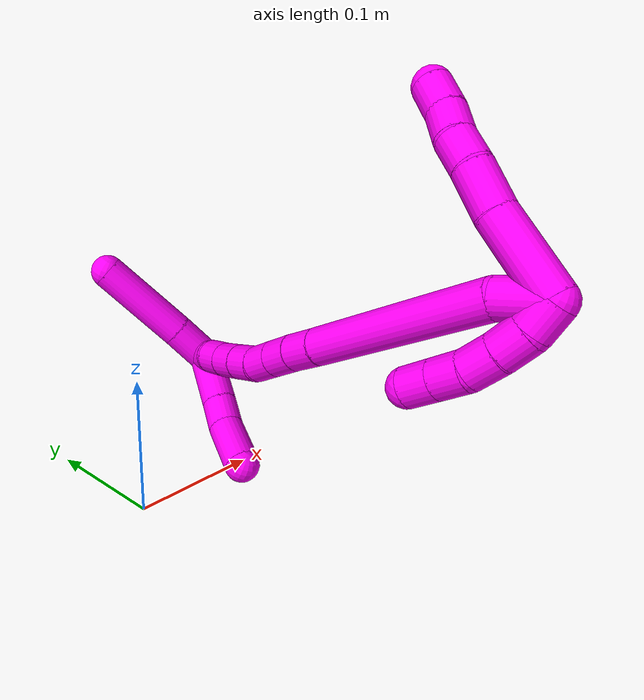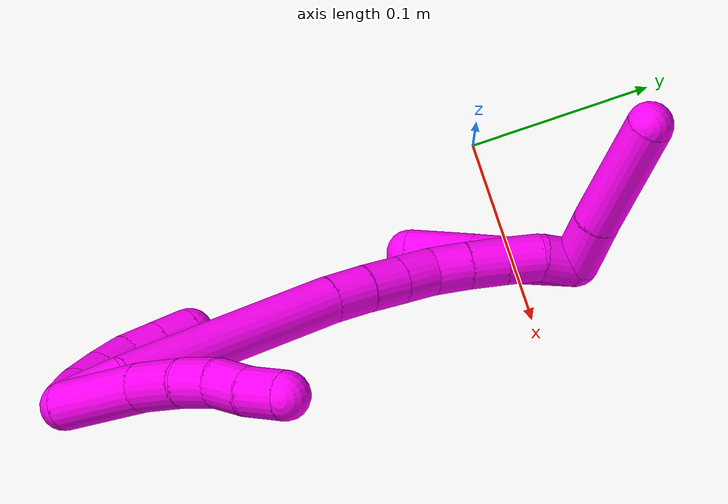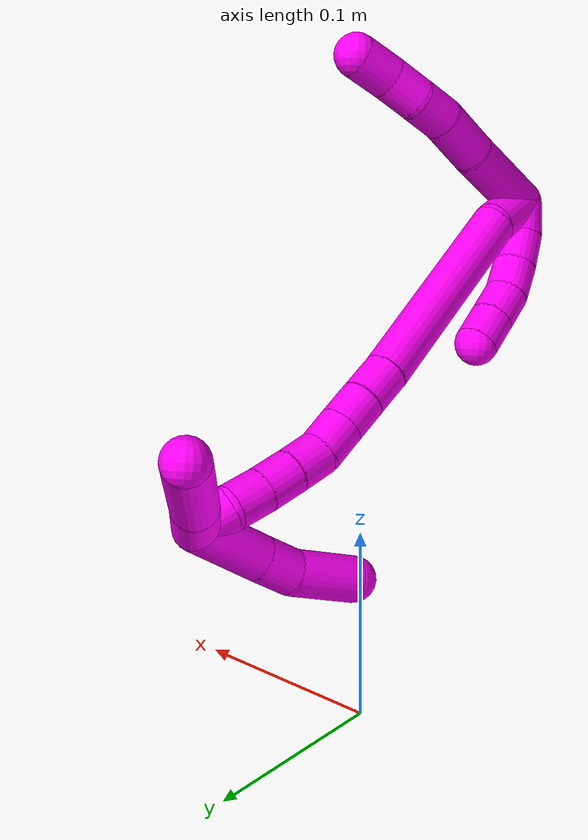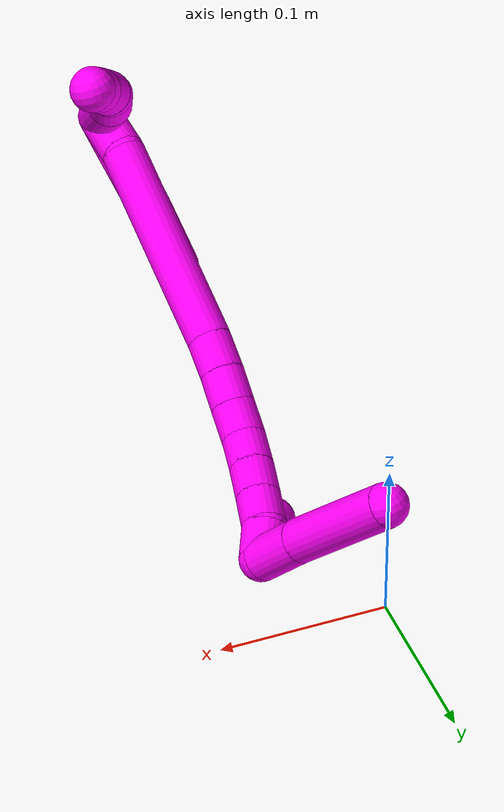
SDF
<sdf version="1.7">
 <world name="default">
  <model name="10">
   <static>0</static>
   <link name="10">
    <collision name="collision-cylinder-e_1_2_8">
     <pose>-0.004531 0.024819 0.01071 -1.1634 -0.166091 0.109364</pose>
     <geometry><cylinder><radius>0.0125</radius><length>0.054816</length></cylinder></geometry>
     <surface>
      <friction><ode><mu>1.16</mu><mu2>1.16</mu2><slip1>0</slip1><slip2>0</slip2></ode></friction>
      <contact><ode><kp>1e+06</kp><kd>1</kd><max_vel>0</max_vel><min_depth>0.001</min_depth></ode></contact>
     </surface>
    </collision>
    <visual name="visual-cylinder-e_1_2_8">
     <pose>-0.004531 0.024819 0.01071 -1.1634 -0.166091 0.109364</pose>
     <geometry><cylinder><radius>0.0125</radius><length>0.054816</length></cylinder></geometry>
     <material><ambient>1 0 0.964706 1</ambient></material>
    </visual>
    <collision name="collision-cylinder-e_2_8_9">
     <pose>-0.010393 0.06287 0.028681 -1.06898 -0.087879 0.052043</pose>
     <geometry><cylinder><radius>0.0125</radius><length>0.030304</length></cylinder></geometry>
     <surface>
      <friction><ode><mu>1.16</mu><mu2>1.16</mu2><slip1>0</slip1><slip2>0</slip2></ode></friction>
      <contact><ode><kp>1e+06</kp><kd>1</kd><max_vel>0</max_vel><min_depth>0.001</min_depth></ode></contact>
     </surface>
    </collision>
    <visual name="visual-cylinder-e_2_8_9">
     <pose>-0.010393 0.06287 0.028681 -1.06898 -0.087879 0.052043</pose>
     <geometry><cylinder><radius>0.0125</radius><length>0.030304</length></cylinder></geometry>
     <material><ambient>1 0 0.964706 1</ambient></material>
    </visual>
    <collision name="collision-cylinder-e_3_9_10">
     <pose>-0.011569 0.086062 0.039996 -1.18413 0.014243 -0.009579</pose>
     <geometry><cylinder><radius>0.0125</radius><length>0.021508</length></cylinder></geometry>
     <surface>
      <friction><ode><mu>1.16</mu><mu2>1.16</mu2><slip1>0</slip1><slip2>0</slip2></ode></friction>
      <contact><ode><kp>1e+06</kp><kd>1</kd><max_vel>0</max_vel><min_depth>0.001</min_depth></ode></contact>
     </surface>
    </collision>
    <visual name="visual-cylinder-e_3_9_10">
     <pose>-0.011569 0.086062 0.039996 -1.18413 0.014243 -0.009579</pose>
     <geometry><cylinder><radius>0.0125</radius><length>0.021508</length></cylinder></geometry>
     <material><ambient>1 0 0.964706 1</ambient></material>
    </visual>
    <collision name="collision-cylinder-e_4_10_11">
     <pose>-0.009382 0.104937 0.048702 -1.08997 0.199556 -0.121231</pose>
     <geometry><cylinder><radius>0.0125</radius><length>0.020521</length></cylinder></geometry>
     <surface>
      <friction><ode><mu>1.16</mu><mu2>1.16</mu2><slip1>0</slip1><slip2>0</slip2></ode></friction>
      <contact><ode><kp>1e+06</kp><kd>1</kd><max_vel>0</max_vel><min_depth>0.001</min_depth></ode></contact>
     </surface>
    </collision>
    <visual name="visual-cylinder-e_4_10_11">
     <pose>-0.009382 0.104937 0.048702 -1.08997 0.199556 -0.121231</pose>
     <geometry><cylinder><radius>0.0125</radius><length>0.020521</length></cylinder></geometry>
     <material><ambient>1 0 0.964706 1</ambient></material>
    </visual>
    <collision name="collision-cylinder-e_5_11_6">
     <pose>-0.006204 0.124386 0.057631 -1.18506 0.100321 -0.067569</pose>
     <geometry><cylinder><radius>0.0125</radius><length>0.02285</length></cylinder></geometry>
     <surface>
      <friction><ode><mu>1.16</mu><mu2>1.16</mu2><slip1>0</slip1><slip2>0</slip2></ode></friction>
      <contact><ode><kp>1e+06</kp><kd>1</kd><max_vel>0</max_vel><min_depth>0.001</min_depth></ode></contact>
     </surface>
    </collision>
    <visual name="visual-cylinder-e_5_11_6">
     <pose>-0.006204 0.124386 0.057631 -1.18506 0.100321 -0.067569</pose>
     <geometry><cylinder><radius>0.0125</radius><length>0.02285</length></cylinder></geometry>
     <material><ambient>1 0 0.964706 1</ambient></material>
    </visual>
    <collision name="collision-cylinder-e_1_2_12">
     <pose>-0.001557 0.000715 -0.009852 -3.06918 -0.156309 2.27511</pose>
     <geometry><cylinder><radius>0.0125</radius><length>0.02</length></cylinder></geometry>
     <surface>
      <friction><ode><mu>1.16</mu><mu2>1.16</mu2><slip1>0</slip1><slip2>0</slip2></ode></friction>
      <contact><ode><kp>1e+06</kp><kd>1</kd><max_vel>0</max_vel><min_depth>0.001</min_depth></ode></contact>
     </surface>
    </collision>
    <visual name="visual-cylinder-e_1_2_12">
     <pose>-0.001557 0.000715 -0.009852 -3.06918 -0.156309 2.27511</pose>
     <geometry><cylinder><radius>0.0125</radius><length>0.02</length></cylinder></geometry>
     <material><ambient>1 0 0.964706 1</ambient></material>
    </visual>
    <collision name="collision-cylinder-e_2_12_13">
     <pose>-0.004835 0.004839 -0.028946 -2.78813 -0.173049 0.904259</pose>
     <geometry><cylinder><radius>0.0125</radius><length>0.02</length></cylinder></geometry>
     <surface>
      <friction><ode><mu>1.16</mu><mu2>1.16</mu2><slip1>0</slip1><slip2>0</slip2></ode></friction>
      <contact><ode><kp>1e+06</kp><kd>1</kd><max_vel>0</max_vel><min_depth>0.001</min_depth></ode></contact>
     </surface>
    </collision>
    <visual name="visual-cylinder-e_2_12_13">
     <pose>-0.004835 0.004839 -0.028946 -2.78813 -0.173049 0.904259</pose>
     <geometry><cylinder><radius>0.0125</radius><length>0.02</length></cylinder></geometry>
     <material><ambient>1 0 0.964706 1</ambient></material>
    </visual>
    <collision name="collision-cylinder-e_3_13_14">
     <pose>-0.008234 0.012546 -0.04706 -2.69058 -0.168482 0.705387</pose>
     <geometry><cylinder><radius>0.0125</radius><length>0.02</length></cylinder></geometry>
     <surface>
      <friction><ode><mu>1.16</mu><mu2>1.16</mu2><slip1>0</slip1><slip2>0</slip2></ode></friction>
      <contact><ode><kp>1e+06</kp><kd>1</kd><max_vel>0</max_vel><min_depth>0.001</min_depth></ode></contact>
     </surface>
    </collision>
    <visual name="visual-cylinder-e_3_13_14">
     <pose>-0.008234 0.012546 -0.04706 -2.69058 -0.168482 0.705387</pose>
     <geometry><cylinder><radius>0.0125</radius><length>0.02</length></cylinder></geometry>
     <material><ambient>1 0 0.964706 1</ambient></material>
    </visual>
    <collision name="collision-cylinder-e_4_14_15">
     <pose>-0.011039 0.023206 -0.063564 -2.44656 -0.113041 0.309911</pose>
     <geometry><cylinder><radius>0.0125</radius><length>0.02</length></cylinder></geometry>
     <surface>
      <friction><ode><mu>1.16</mu><mu2>1.16</mu2><slip1>0</slip1><slip2>0</slip2></ode></friction>
      <contact><ode><kp>1e+06</kp><kd>1</kd><max_vel>0</max_vel><min_depth>0.001</min_depth></ode></contact>
     </surface>
    </collision>
    <visual name="visual-cylinder-e_4_14_15">
     <pose>-0.011039 0.023206 -0.063564 -2.44656 -0.113041 0.309911</pose>
     <geometry><cylinder><radius>0.0125</radius><length>0.02</length></cylinder></geometry>
     <material><ambient>1 0 0.964706 1</ambient></material>
    </visual>
    <collision name="collision-cylinder-e_5_15_5">
     <pose>-0.013289 0.035943 -0.078819 -2.44525 -0.112433 0.307649</pose>
     <geometry><cylinder><radius>0.0125</radius><length>0.02</length></cylinder></geometry>
     <surface>
      <friction><ode><mu>1.16</mu><mu2>1.16</mu2><slip1>0</slip1><slip2>0</slip2></ode></friction>
      <contact><ode><kp>1e+06</kp><kd>1</kd><max_vel>0</max_vel><min_depth>0.001</min_depth></ode></contact>
     </surface>
    </collision>
    <visual name="visual-cylinder-e_5_15_5">
     <pose>-0.013289 0.035943 -0.078819 -2.44525 -0.112433 0.307649</pose>
     <geometry><cylinder><radius>0.0125</radius><length>0.02</length></cylinder></geometry>
     <material><ambient>1 0 0.964706 1</ambient></material>
    </visual>
    <collision name="collision-cylinder-e_1_2_16">
     <pose>-0.003263 0.013432 -0.008064 -2.11146 -0.205363 0.360152</pose>
     <geometry><cylinder><radius>0.0125</radius><length>0.032005</length></cylinder></geometry>
     <surface>
      <friction><ode><mu>1.16</mu><mu2>1.16</mu2><slip1>0</slip1><slip2>0</slip2></ode></friction>
      <contact><ode><kp>1e+06</kp><kd>1</kd><max_vel>0</max_vel><min_depth>0.001</min_depth></ode></contact>
     </surface>
    </collision>
    <visual name="visual-cylinder-e_1_2_16">
     <pose>-0.003263 0.013432 -0.008064 -2.11146 -0.205363 0.360152</pose>
     <geometry><cylinder><radius>0.0125</radius><length>0.032005</length></cylinder></geometry>
     <material><ambient>1 0 0.964706 1</ambient></material>
    </visual>
    <collision name="collision-cylinder-e_2_16_17">
     <pose>-0.012815 0.069724 -0.061706 -2.38692 -0.100177 0.251638</pose>
     <geometry><cylinder><radius>0.0125</radius><length>0.125761</length></cylinder></geometry>
     <surface>
      <friction><ode><mu>1.16</mu><mu2>1.16</mu2><slip1>0</slip1><slip2>0</slip2></ode></friction>
      <contact><ode><kp>1e+06</kp><kd>1</kd><max_vel>0</max_vel><min_depth>0.001</min_depth></ode></contact>
     </surface>
    </collision>
    <visual name="visual-cylinder-e_2_16_17">
     <pose>-0.012815 0.069724 -0.061706 -2.38692 -0.100177 0.251638</pose>
     <geometry><cylinder><radius>0.0125</radius><length>0.125761</length></cylinder></geometry>
     <material><ambient>1 0 0.964706 1</ambient></material>
    </visual>
    <collision name="collision-cylinder-e_3_17_18">
     <pose>-0.019544 0.120359 -0.11504 -2.35496 -0.040082 0.096534</pose>
     <geometry><cylinder><radius>0.0125</radius><length>0.021982</length></cylinder></geometry>
     <surface>
      <friction><ode><mu>1.16</mu><mu2>1.16</mu2><slip1>0</slip1><slip2>0</slip2></ode></friction>
      <contact><ode><kp>1e+06</kp><kd>1</kd><max_vel>0</max_vel><min_depth>0.001</min_depth></ode></contact>
     </surface>
    </collision>
    <visual name="visual-cylinder-e_3_17_18">
     <pose>-0.019544 0.120359 -0.11504 -2.35496 -0.040082 0.096534</pose>
     <geometry><cylinder><radius>0.0125</radius><length>0.021982</length></cylinder></geometry>
     <material><ambient>1 0 0.964706 1</ambient></material>
    </visual>
    <collision name="collision-cylinder-e_4_18_19">
     <pose>-0.019929 0.135031 -0.130129 -2.38691 0.005489 -0.01385</pose>
     <geometry><cylinder><radius>0.0125</radius><length>0.020134</length></cylinder></geometry>
     <surface>
      <friction><ode><mu>1.16</mu><mu2>1.16</mu2><slip1>0</slip1><slip2>0</slip2></ode></friction>
      <contact><ode><kp>1e+06</kp><kd>1</kd><max_vel>0</max_vel><min_depth>0.001</min_depth></ode></contact>
     </surface>
    </collision>
    <visual name="visual-cylinder-e_4_18_19">
     <pose>-0.019929 0.135031 -0.130129 -2.38691 0.005489 -0.01385</pose>
     <geometry><cylinder><radius>0.0125</radius><length>0.020134</length></cylinder></geometry>
     <material><ambient>1 0 0.964706 1</ambient></material>
    </visual>
    <collision name="collision-cylinder-e_5_19_20">
     <pose>-0.019893 0.148773 -0.144816 -2.39197 -0.001843 0.004685</pose>
     <geometry><cylinder><radius>0.0125</radius><length>0.020092</length></cylinder></geometry>
     <surface>
      <friction><ode><mu>1.16</mu><mu2>1.16</mu2><slip1>0</slip1><slip2>0</slip2></ode></friction>
      <contact><ode><kp>1e+06</kp><kd>1</kd><max_vel>0</max_vel><min_depth>0.001</min_depth></ode></contact>
     </surface>
    </collision>
    <visual name="visual-cylinder-e_5_19_20">
     <pose>-0.019893 0.148773 -0.144816 -2.39197 -0.001843 0.004685</pose>
     <geometry><cylinder><radius>0.0125</radius><length>0.020092</length></cylinder></geometry>
     <material><ambient>1 0 0.964706 1</ambient></material>
    </visual>
    <collision name="collision-cylinder-e_6_20_21">
     <pose>-0.019498 0.164156 -0.15737 -2.11784 0.041335 -0.07355</pose>
     <geometry><cylinder><radius>0.0125</radius><length>0.020011</length></cylinder></geometry>
     <surface>
      <friction><ode><mu>1.16</mu><mu2>1.16</mu2><slip1>0</slip1><slip2>0</slip2></ode></friction>
      <contact><ode><kp>1e+06</kp><kd>1</kd><max_vel>0</max_vel><min_depth>0.001</min_depth></ode></contact>
     </surface>
    </collision>
    <visual name="visual-cylinder-e_6_20_21">
     <pose>-0.019498 0.164156 -0.15737 -2.11784 0.041335 -0.07355</pose>
     <geometry><cylinder><radius>0.0125</radius><length>0.020011</length></cylinder></geometry>
     <material><ambient>1 0 0.964706 1</ambient></material>
    </visual>
    <collision name="collision-cylinder-e_7_21_22">
     <pose>-0.018285 0.181226 -0.167732 -2.11489 0.080003 -0.141744</pose>
     <geometry><cylinder><radius>0.0125</radius><length>0.020008</length></cylinder></geometry>
     <surface>
      <friction><ode><mu>1.16</mu><mu2>1.16</mu2><slip1>0</slip1><slip2>0</slip2></ode></friction>
      <contact><ode><kp>1e+06</kp><kd>1</kd><max_vel>0</max_vel><min_depth>0.001</min_depth></ode></contact>
     </surface>
    </collision>
    <visual name="visual-cylinder-e_7_21_22">
     <pose>-0.018285 0.181226 -0.167732 -2.11489 0.080003 -0.141744</pose>
     <geometry><cylinder><radius>0.0125</radius><length>0.020008</length></cylinder></geometry>
     <material><ambient>1 0 0.964706 1</ambient></material>
    </visual>
    <collision name="collision-cylinder-e_8_22_23">
     <pose>-0.016584 0.198532 -0.17761 -2.06399 0.090233 -0.150759</pose>
     <geometry><cylinder><radius>0.0125</radius><length>0.020004</length></cylinder></geometry>
     <surface>
      <friction><ode><mu>1.16</mu><mu2>1.16</mu2><slip1>0</slip1><slip2>0</slip2></ode></friction>
      <contact><ode><kp>1e+06</kp><kd>1</kd><max_vel>0</max_vel><min_depth>0.001</min_depth></ode></contact>
     </surface>
    </collision>
    <visual name="visual-cylinder-e_8_22_23">
     <pose>-0.016584 0.198532 -0.17761 -2.06399 0.090233 -0.150759</pose>
     <geometry><cylinder><radius>0.0125</radius><length>0.020004</length></cylinder></geometry>
     <material><ambient>1 0 0.964706 1</ambient></material>
    </visual>
    <collision name="collision-cylinder-e_9_23_1">
     <pose>-0.012143 0.214906 -0.187779 -2.19327 0.361759 -0.68462</pose>
     <geometry><cylinder><radius>0.0125</radius><length>0.020002</length></cylinder></geometry>
     <surface>
      <friction><ode><mu>1.16</mu><mu2>1.16</mu2><slip1>0</slip1><slip2>0</slip2></ode></friction>
      <contact><ode><kp>1e+06</kp><kd>1</kd><max_vel>0</max_vel><min_depth>0.001</min_depth></ode></contact>
     </surface>
    </collision>
    <visual name="visual-cylinder-e_9_23_1">
     <pose>-0.012143 0.214906 -0.187779 -2.19327 0.361759 -0.68462</pose>
     <geometry><cylinder><radius>0.0125</radius><length>0.020002</length></cylinder></geometry>
     <material><ambient>1 0 0.964706 1</ambient></material>
    </visual>
    <collision name="collision-cylinder-e_1_1_24">
     <pose>-0.019969 0.231328 -0.187383 -0.985279 -0.820881 0.45894</pose>
     <geometry><cylinder><radius>0.0125</radius><length>0.031063</length></cylinder></geometry>
     <surface>
      <friction><ode><mu>1.16</mu><mu2>1.16</mu2><slip1>0</slip1><slip2>0</slip2></ode></friction>
      <contact><ode><kp>1e+06</kp><kd>1</kd><max_vel>0</max_vel><min_depth>0.001</min_depth></ode></contact>
     </surface>
    </collision>
    <visual name="visual-cylinder-e_1_1_24">
     <pose>-0.019969 0.231328 -0.187383 -0.985279 -0.820881 0.45894</pose>
     <geometry><cylinder><radius>0.0125</radius><length>0.031063</length></cylinder></geometry>
     <material><ambient>1 0 0.964706 1</ambient></material>
    </visual>
    <collision name="collision-cylinder-e_2_24_4">
     <pose>-0.05631 0.260855 -0.16989 -1.05852 -0.810479 0.491694</pose>
     <geometry><cylinder><radius>0.0125</radius><length>0.068937</length></cylinder></geometry>
     <surface>
      <friction><ode><mu>1.16</mu><mu2>1.16</mu2><slip1>0</slip1><slip2>0</slip2></ode></friction>
      <contact><ode><kp>1e+06</kp><kd>1</kd><max_vel>0</max_vel><min_depth>0.001</min_depth></ode></contact>
     </surface>
    </collision>
    <visual name="visual-cylinder-e_2_24_4">
     <pose>-0.05631 0.260855 -0.16989 -1.05852 -0.810479 0.491694</pose>
     <geometry><cylinder><radius>0.0125</radius><length>0.068937</length></cylinder></geometry>
     <material><ambient>1 0 0.964706 1</ambient></material>
    </visual>
    <collision name="collision-cylinder-e_1_1_25">
     <pose>-0.010155 0.203226 -0.200585 1.93511 -0.075064 -0.108905</pose>
     <geometry><cylinder><radius>0.0125</radius><length>0.041384</length></cylinder></geometry>
     <surface>
      <friction><ode><mu>1.16</mu><mu2>1.16</mu2><slip1>0</slip1><slip2>0</slip2></ode></friction>
      <contact><ode><kp>1e+06</kp><kd>1</kd><max_vel>0</max_vel><min_depth>0.001</min_depth></ode></contact>
     </surface>
    </collision>
    <visual name="visual-cylinder-e_1_1_25">
     <pose>-0.010155 0.203226 -0.200585 1.93511 -0.075064 -0.108905</pose>
     <geometry><cylinder><radius>0.0125</radius><length>0.041384</length></cylinder></geometry>
     <material><ambient>1 0 0.964706 1</ambient></material>
    </visual>
    <collision name="collision-cylinder-e_2_25_26">
     <pose>-0.012839 0.173969 -0.211578 1.92067 -0.106138 -0.151562</pose>
     <geometry><cylinder><radius>0.0125</radius><length>0.021361</length></cylinder></geometry>
     <surface>
      <friction><ode><mu>1.16</mu><mu2>1.16</mu2><slip1>0</slip1><slip2>0</slip2></ode></friction>
      <contact><ode><kp>1e+06</kp><kd>1</kd><max_vel>0</max_vel><min_depth>0.001</min_depth></ode></contact>
     </surface>
    </collision>
    <visual name="visual-cylinder-e_2_25_26">
     <pose>-0.012839 0.173969 -0.211578 1.92067 -0.106138 -0.151562</pose>
     <geometry><cylinder><radius>0.0125</radius><length>0.021361</length></cylinder></geometry>
     <material><ambient>1 0 0.964706 1</ambient></material>
    </visual>
    <collision name="collision-cylinder-e_3_26_3">
     <pose>-0.016991 0.145676 -0.216753 1.65439 -0.162924 -0.177074</pose>
     <geometry><cylinder><radius>0.0125</radius><length>0.037255</length></cylinder></geometry>
     <surface>
      <friction><ode><mu>1.16</mu><mu2>1.16</mu2><slip1>0</slip1><slip2>0</slip2></ode></friction>
      <contact><ode><kp>1e+06</kp><kd>1</kd><max_vel>0</max_vel><min_depth>0.001</min_depth></ode></contact>
     </surface>
    </collision>
    <visual name="visual-cylinder-e_3_26_3">
     <pose>-0.016991 0.145676 -0.216753 1.65439 -0.162924 -0.177074</pose>
     <geometry><cylinder><radius>0.0125</radius><length>0.037255</length></cylinder></geometry>
     <material><ambient>1 0 0.964706 1</ambient></material>
    </visual>
    <collision name="collision-sphere-3">
     <pose>-0.020013 0.127359 -0.218287 0 -0 0</pose>
     <geometry><sphere><radius>0.0125</radius></sphere></geometry>
     <surface>
      <friction><ode><mu>1.16</mu><mu2>1.16</mu2><slip1>0</slip1><slip2>0</slip2></ode></friction>
      <contact><ode><kp>1e+06</kp><kd>1</kd><max_vel>0</max_vel><min_depth>0.001</min_depth></ode></contact>
     </surface>
    </collision>
    <visual name="visual-sphere-3">
     <pose>-0.020013 0.127359 -0.218287 0 -0 0</pose>
     <geometry><sphere><radius>0.0125</radius></sphere></geometry>
     <material><ambient>1 0 0.964706 1</ambient></material>
    </visual>
    <collision name="collision-sphere-26">
     <pose>-0.01397 0.163993 -0.215218 0 -0 0</pose>
     <geometry><sphere><radius>0.0125</radius></sphere></geometry>
     <surface>
      <friction><ode><mu>1.16</mu><mu2>1.16</mu2><slip1>0</slip1><slip2>0</slip2></ode></friction>
      <contact><ode><kp>1e+06</kp><kd>1</kd><max_vel>0</max_vel><min_depth>0.001</min_depth></ode></contact>
     </surface>
    </collision>
    <visual name="visual-sphere-26">
     <pose>-0.01397 0.163993 -0.215218 0 -0 0</pose>
     <geometry><sphere><radius>0.0125</radius></sphere></geometry>
     <material><ambient>1 0 0.964706 1</ambient></material>
    </visual>
    <collision name="collision-sphere-25">
     <pose>-0.011707 0.183946 -0.207937 0 -0 0</pose>
     <geometry><sphere><radius>0.0125</radius></sphere></geometry>
     <surface>
      <friction><ode><mu>1.16</mu><mu2>1.16</mu2><slip1>0</slip1><slip2>0</slip2></ode></friction>
      <contact><ode><kp>1e+06</kp><kd>1</kd><max_vel>0</max_vel><min_depth>0.001</min_depth></ode></contact>
     </surface>
    </collision>
    <visual name="visual-sphere-25">
     <pose>-0.011707 0.183946 -0.207937 0 -0 0</pose>
     <geometry><sphere><radius>0.0125</radius></sphere></geometry>
     <material><ambient>1 0 0.964706 1</ambient></material>
    </visual>
    <collision name="collision-sphere-4">
     <pose>-0.081287 0.28156 -0.158246 0 -0 0</pose>
     <geometry><sphere><radius>0.0125</radius></sphere></geometry>
     <surface>
      <friction><ode><mu>1.16</mu><mu2>1.16</mu2><slip1>0</slip1><slip2>0</slip2></ode></friction>
      <contact><ode><kp>1e+06</kp><kd>1</kd><max_vel>0</max_vel><min_depth>0.001</min_depth></ode></contact>
     </surface>
    </collision>
    <visual name="visual-sphere-4">
     <pose>-0.081287 0.28156 -0.158246 0 -0 0</pose>
     <geometry><sphere><radius>0.0125</radius></sphere></geometry>
     <material><ambient>1 0 0.964706 1</ambient></material>
    </visual>
    <collision name="collision-sphere-24">
     <pose>-0.031334 0.24015 -0.181533 0 -0 0</pose>
     <geometry><sphere><radius>0.0125</radius></sphere></geometry>
     <surface>
      <friction><ode><mu>1.16</mu><mu2>1.16</mu2><slip1>0</slip1><slip2>0</slip2></ode></friction>
      <contact><ode><kp>1e+06</kp><kd>1</kd><max_vel>0</max_vel><min_depth>0.001</min_depth></ode></contact>
     </surface>
    </collision>
    <visual name="visual-sphere-24">
     <pose>-0.031334 0.24015 -0.181533 0 -0 0</pose>
     <geometry><sphere><radius>0.0125</radius></sphere></geometry>
     <material><ambient>1 0 0.964706 1</ambient></material>
    </visual>
    <collision name="collision-sphere-1">
     <pose>-0.008604 0.222505 -0.193233 0 -0 0</pose>
     <geometry><sphere><radius>0.0125</radius></sphere></geometry>
     <surface>
      <friction><ode><mu>1.16</mu><mu2>1.16</mu2><slip1>0</slip1><slip2>0</slip2></ode></friction>
      <contact><ode><kp>1e+06</kp><kd>1</kd><max_vel>0</max_vel><min_depth>0.001</min_depth></ode></contact>
     </surface>
    </collision>
    <visual name="visual-sphere-1">
     <pose>-0.008604 0.222505 -0.193233 0 -0 0</pose>
     <geometry><sphere><radius>0.0125</radius></sphere></geometry>
     <material><ambient>1 0 0.964706 1</ambient></material>
    </visual>
    <collision name="collision-sphere-23">
     <pose>-0.015683 0.207307 -0.182326 0 -0 0</pose>
     <geometry><sphere><radius>0.0125</radius></sphere></geometry>
     <surface>
      <friction><ode><mu>1.16</mu><mu2>1.16</mu2><slip1>0</slip1><slip2>0</slip2></ode></friction>
      <contact><ode><kp>1e+06</kp><kd>1</kd><max_vel>0</max_vel><min_depth>0.001</min_depth></ode></contact>
     </surface>
    </collision>
    <visual name="visual-sphere-23">
     <pose>-0.015683 0.207307 -0.182326 0 -0 0</pose>
     <geometry><sphere><radius>0.0125</radius></sphere></geometry>
     <material><ambient>1 0 0.964706 1</ambient></material>
    </visual>
    <collision name="collision-sphere-22">
     <pose>-0.017485 0.189758 -0.172894 0 -0 0</pose>
     <geometry><sphere><radius>0.0125</radius></sphere></geometry>
     <surface>
      <friction><ode><mu>1.16</mu><mu2>1.16</mu2><slip1>0</slip1><slip2>0</slip2></ode></friction>
      <contact><ode><kp>1e+06</kp><kd>1</kd><max_vel>0</max_vel><min_depth>0.001</min_depth></ode></contact>
     </surface>
    </collision>
    <visual name="visual-sphere-22">
     <pose>-0.017485 0.189758 -0.172894 0 -0 0</pose>
     <geometry><sphere><radius>0.0125</radius></sphere></geometry>
     <material><ambient>1 0 0.964706 1</ambient></material>
    </visual>
    <collision name="collision-sphere-21">
     <pose>-0.019084 0.172694 -0.16257 0 -0 0</pose>
     <geometry><sphere><radius>0.0125</radius></sphere></geometry>
     <surface>
      <friction><ode><mu>1.16</mu><mu2>1.16</mu2><slip1>0</slip1><slip2>0</slip2></ode></friction>
      <contact><ode><kp>1e+06</kp><kd>1</kd><max_vel>0</max_vel><min_depth>0.001</min_depth></ode></contact>
     </surface>
    </collision>
    <visual name="visual-sphere-21">
     <pose>-0.019084 0.172694 -0.16257 0 -0 0</pose>
     <geometry><sphere><radius>0.0125</radius></sphere></geometry>
     <material><ambient>1 0 0.964706 1</ambient></material>
    </visual>
    <collision name="collision-sphere-6">
     <pose>-0.00506 0.134919 0.061908 0 -0 0</pose>
     <geometry><sphere><radius>0.0125</radius></sphere></geometry>
     <surface>
      <friction><ode><mu>1.16</mu><mu2>1.16</mu2><slip1>0</slip1><slip2>0</slip2></ode></friction>
      <contact><ode><kp>1e+06</kp><kd>1</kd><max_vel>0</max_vel><min_depth>0.001</min_depth></ode></contact>
     </surface>
    </collision>
    <visual name="visual-sphere-6">
     <pose>-0.00506 0.134919 0.061908 0 -0 0</pose>
     <geometry><sphere><radius>0.0125</radius></sphere></geometry>
     <material><ambient>1 0 0.964706 1</ambient></material>
    </visual>
    <collision name="collision-sphere-11">
     <pose>-0.007348 0.113854 0.053354 0 -0 0</pose>
     <geometry><sphere><radius>0.0125</radius></sphere></geometry>
     <surface>
      <friction><ode><mu>1.16</mu><mu2>1.16</mu2><slip1>0</slip1><slip2>0</slip2></ode></friction>
      <contact><ode><kp>1e+06</kp><kd>1</kd><max_vel>0</max_vel><min_depth>0.001</min_depth></ode></contact>
     </surface>
    </collision>
    <visual name="visual-sphere-11">
     <pose>-0.007348 0.113854 0.053354 0 -0 0</pose>
     <geometry><sphere><radius>0.0125</radius></sphere></geometry>
     <material><ambient>1 0 0.964706 1</ambient></material>
    </visual>
    <collision name="collision-sphere-10">
     <pose>-0.011416 0.096021 0.044051 0 -0 0</pose>
     <geometry><sphere><radius>0.0125</radius></sphere></geometry>
     <surface>
      <friction><ode><mu>1.16</mu><mu2>1.16</mu2><slip1>0</slip1><slip2>0</slip2></ode></friction>
      <contact><ode><kp>1e+06</kp><kd>1</kd><max_vel>0</max_vel><min_depth>0.001</min_depth></ode></contact>
     </surface>
    </collision>
    <visual name="visual-sphere-10">
     <pose>-0.011416 0.096021 0.044051 0 -0 0</pose>
     <geometry><sphere><radius>0.0125</radius></sphere></geometry>
     <material><ambient>1 0 0.964706 1</ambient></material>
    </visual>
    <collision name="collision-sphere-9">
     <pose>-0.011722 0.076103 0.035941 0 -0 0</pose>
     <geometry><sphere><radius>0.0125</radius></sphere></geometry>
     <surface>
      <friction><ode><mu>1.16</mu><mu2>1.16</mu2><slip1>0</slip1><slip2>0</slip2></ode></friction>
      <contact><ode><kp>1e+06</kp><kd>1</kd><max_vel>0</max_vel><min_depth>0.001</min_depth></ode></contact>
     </surface>
    </collision>
    <visual name="visual-sphere-9">
     <pose>-0.011722 0.076103 0.035941 0 -0 0</pose>
     <geometry><sphere><radius>0.0125</radius></sphere></geometry>
     <material><ambient>1 0 0.964706 1</ambient></material>
    </visual>
    <collision name="collision-sphere-2">
     <geometry><sphere><radius>0.0125</radius></sphere></geometry>
     <surface>
      <friction><ode><mu>1.16</mu><mu2>1.16</mu2><slip1>0</slip1><slip2>0</slip2></ode></friction>
      <contact><ode><kp>1e+06</kp><kd>1</kd><max_vel>0</max_vel><min_depth>0.001</min_depth></ode></contact>
     </surface>
    </collision>
    <visual name="visual-sphere-2">
     <geometry><sphere><radius>0.0125</radius></sphere></geometry>
     <material><ambient>1 0 0.964706 1</ambient></material>
    </visual>
    <collision name="collision-sphere-19">
     <pose>-0.019874 0.141928 -0.137463 0 -0 0</pose>
     <geometry><sphere><radius>0.0125</radius></sphere></geometry>
     <surface>
      <friction><ode><mu>1.16</mu><mu2>1.16</mu2><slip1>0</slip1><slip2>0</slip2></ode></friction>
      <contact><ode><kp>1e+06</kp><kd>1</kd><max_vel>0</max_vel><min_depth>0.001</min_depth></ode></contact>
     </surface>
    </collision>
    <visual name="visual-sphere-19">
     <pose>-0.019874 0.141928 -0.137463 0 -0 0</pose>
     <geometry><sphere><radius>0.0125</radius></sphere></geometry>
     <material><ambient>1 0 0.964706 1</ambient></material>
    </visual>
    <collision name="collision-sphere-8">
     <pose>-0.009063 0.049637 0.02142 0 -0 0</pose>
     <geometry><sphere><radius>0.0125</radius></sphere></geometry>
     <surface>
      <friction><ode><mu>1.16</mu><mu2>1.16</mu2><slip1>0</slip1><slip2>0</slip2></ode></friction>
      <contact><ode><kp>1e+06</kp><kd>1</kd><max_vel>0</max_vel><min_depth>0.001</min_depth></ode></contact>
     </surface>
    </collision>
    <visual name="visual-sphere-8">
     <pose>-0.009063 0.049637 0.02142 0 -0 0</pose>
     <geometry><sphere><radius>0.0125</radius></sphere></geometry>
     <material><ambient>1 0 0.964706 1</ambient></material>
    </visual>
    <collision name="collision-sphere-12">
     <pose>-0.003113 0.001429 -0.019704 0 -0 0</pose>
     <geometry><sphere><radius>0.0125</radius></sphere></geometry>
     <surface>
      <friction><ode><mu>1.16</mu><mu2>1.16</mu2><slip1>0</slip1><slip2>0</slip2></ode></friction>
      <contact><ode><kp>1e+06</kp><kd>1</kd><max_vel>0</max_vel><min_depth>0.001</min_depth></ode></contact>
     </surface>
    </collision>
    <visual name="visual-sphere-12">
     <pose>-0.003113 0.001429 -0.019704 0 -0 0</pose>
     <geometry><sphere><radius>0.0125</radius></sphere></geometry>
     <material><ambient>1 0 0.964706 1</ambient></material>
    </visual>
    <collision name="collision-sphere-13">
     <pose>-0.006557 0.008249 -0.038188 0 -0 0</pose>
     <geometry><sphere><radius>0.0125</radius></sphere></geometry>
     <surface>
      <friction><ode><mu>1.16</mu><mu2>1.16</mu2><slip1>0</slip1><slip2>0</slip2></ode></friction>
      <contact><ode><kp>1e+06</kp><kd>1</kd><max_vel>0</max_vel><min_depth>0.001</min_depth></ode></contact>
     </surface>
    </collision>
    <visual name="visual-sphere-13">
     <pose>-0.006557 0.008249 -0.038188 0 -0 0</pose>
     <geometry><sphere><radius>0.0125</radius></sphere></geometry>
     <material><ambient>1 0 0.964706 1</ambient></material>
    </visual>
    <collision name="collision-sphere-14">
     <pose>-0.009911 0.016843 -0.055933 0 -0 0</pose>
     <geometry><sphere><radius>0.0125</radius></sphere></geometry>
     <surface>
      <friction><ode><mu>1.16</mu><mu2>1.16</mu2><slip1>0</slip1><slip2>0</slip2></ode></friction>
      <contact><ode><kp>1e+06</kp><kd>1</kd><max_vel>0</max_vel><min_depth>0.001</min_depth></ode></contact>
     </surface>
    </collision>
    <visual name="visual-sphere-14">
     <pose>-0.009911 0.016843 -0.055933 0 -0 0</pose>
     <geometry><sphere><radius>0.0125</radius></sphere></geometry>
     <material><ambient>1 0 0.964706 1</ambient></material>
    </visual>
    <collision name="collision-sphere-15">
     <pose>-0.012167 0.02957 -0.071196 0 -0 0</pose>
     <geometry><sphere><radius>0.0125</radius></sphere></geometry>
     <surface>
      <friction><ode><mu>1.16</mu><mu2>1.16</mu2><slip1>0</slip1><slip2>0</slip2></ode></friction>
      <contact><ode><kp>1e+06</kp><kd>1</kd><max_vel>0</max_vel><min_depth>0.001</min_depth></ode></contact>
     </surface>
    </collision>
    <visual name="visual-sphere-15">
     <pose>-0.012167 0.02957 -0.071196 0 -0 0</pose>
     <geometry><sphere><radius>0.0125</radius></sphere></geometry>
     <material><ambient>1 0 0.964706 1</ambient></material>
    </visual>
    <collision name="collision-sphere-5">
     <pose>-0.014411 0.042317 -0.086443 0 -0 0</pose>
     <geometry><sphere><radius>0.0125</radius></sphere></geometry>
     <surface>
      <friction><ode><mu>1.16</mu><mu2>1.16</mu2><slip1>0</slip1><slip2>0</slip2></ode></friction>
      <contact><ode><kp>1e+06</kp><kd>1</kd><max_vel>0</max_vel><min_depth>0.001</min_depth></ode></contact>
     </surface>
    </collision>
    <visual name="visual-sphere-5">
     <pose>-0.014411 0.042317 -0.086443 0 -0 0</pose>
     <geometry><sphere><radius>0.0125</radius></sphere></geometry>
     <material><ambient>1 0 0.964706 1</ambient></material>
    </visual>
    <collision name="collision-sphere-16">
     <pose>-0.006527 0.026863 -0.016127 0 -0 0</pose>
     <geometry><sphere><radius>0.0125</radius></sphere></geometry>
     <surface>
      <friction><ode><mu>1.16</mu><mu2>1.16</mu2><slip1>0</slip1><slip2>0</slip2></ode></friction>
      <contact><ode><kp>1e+06</kp><kd>1</kd><max_vel>0</max_vel><min_depth>0.001</min_depth></ode></contact>
     </surface>
    </collision>
    <visual name="visual-sphere-16">
     <pose>-0.006527 0.026863 -0.016127 0 -0 0</pose>
     <geometry><sphere><radius>0.0125</radius></sphere></geometry>
     <material><ambient>1 0 0.964706 1</ambient></material>
    </visual>
    <collision name="collision-sphere-17">
     <pose>-0.019104 0.112584 -0.107284 0 -0 0</pose>
     <geometry><sphere><radius>0.0125</radius></sphere></geometry>
     <surface>
      <friction><ode><mu>1.16</mu><mu2>1.16</mu2><slip1>0</slip1><slip2>0</slip2></ode></friction>
      <contact><ode><kp>1e+06</kp><kd>1</kd><max_vel>0</max_vel><min_depth>0.001</min_depth></ode></contact>
     </surface>
    </collision>
    <visual name="visual-sphere-17">
     <pose>-0.019104 0.112584 -0.107284 0 -0 0</pose>
     <geometry><sphere><radius>0.0125</radius></sphere></geometry>
     <material><ambient>1 0 0.964706 1</ambient></material>
    </visual>
    <collision name="collision-sphere-18">
     <pose>-0.019985 0.128135 -0.122796 0 -0 0</pose>
     <geometry><sphere><radius>0.0125</radius></sphere></geometry>
     <surface>
      <friction><ode><mu>1.16</mu><mu2>1.16</mu2><slip1>0</slip1><slip2>0</slip2></ode></friction>
      <contact><ode><kp>1e+06</kp><kd>1</kd><max_vel>0</max_vel><min_depth>0.001</min_depth></ode></contact>
     </surface>
    </collision>
    <visual name="visual-sphere-18">
     <pose>-0.019985 0.128135 -0.122796 0 -0 0</pose>
     <geometry><sphere><radius>0.0125</radius></sphere></geometry>
     <material><ambient>1 0 0.964706 1</ambient></material>
    </visual>
    <collision name="collision-sphere-20">
     <pose>-0.019911 0.155618 -0.15217 0 -0 0</pose>
     <geometry><sphere><radius>0.0125</radius></sphere></geometry>
     <surface>
      <friction><ode><mu>1.16</mu><mu2>1.16</mu2><slip1>0</slip1><slip2>0</slip2></ode></friction>
      <contact><ode><kp>1e+06</kp><kd>1</kd><max_vel>0</max_vel><min_depth>0.001</min_depth></ode></contact>
     </surface>
    </collision>
    <visual name="visual-sphere-20">
     <pose>-0.019911 0.155618 -0.15217 0 -0 0</pose>
     <geometry><sphere><radius>0.0125</radius></sphere></geometry>
     <material><ambient>1 0 0.964706 1</ambient></material>
    </visual>
    <inertial>
     <pose>-0.016043 0.11615 -0.091001 0 -0 0</pose>
     <mass>0.75</mass>
     <inertia>
      <ixx>0.000289</ixx>
      <ixy>0</ixy>
      <ixz>0</ixz>
      <iyy>-1.1e-05</iyy>
      <iyz>0</iyz>
      <izz>-0.000128</izz>
     </inertia>
    </inertial>
   </link>
   <pose>0.081012 -0.246957 0.19781 0.304004 0.259402 -0.157557</pose>
  </model>
 </world>
</sdf>
